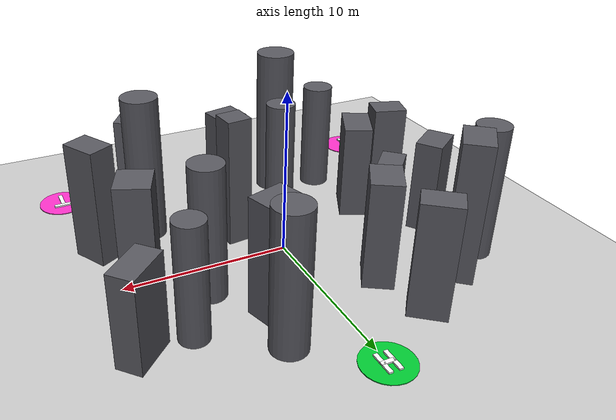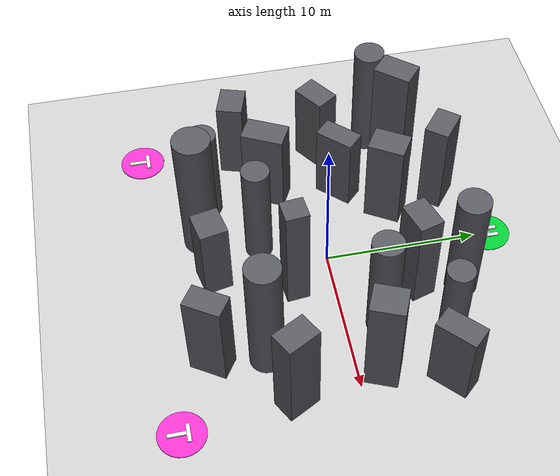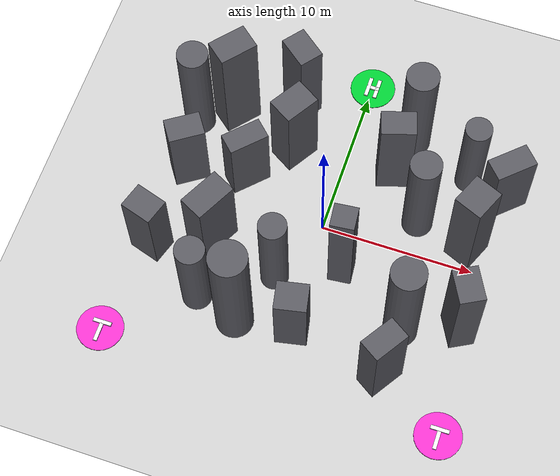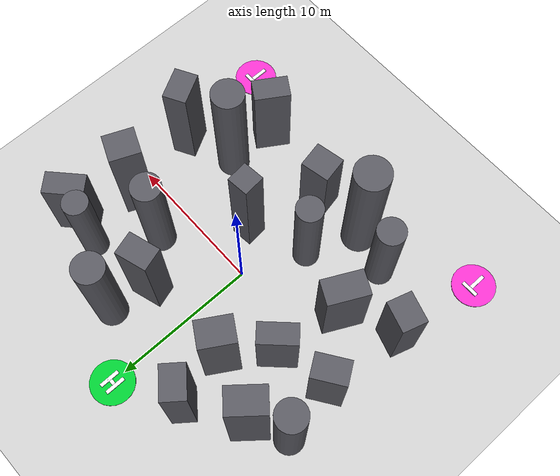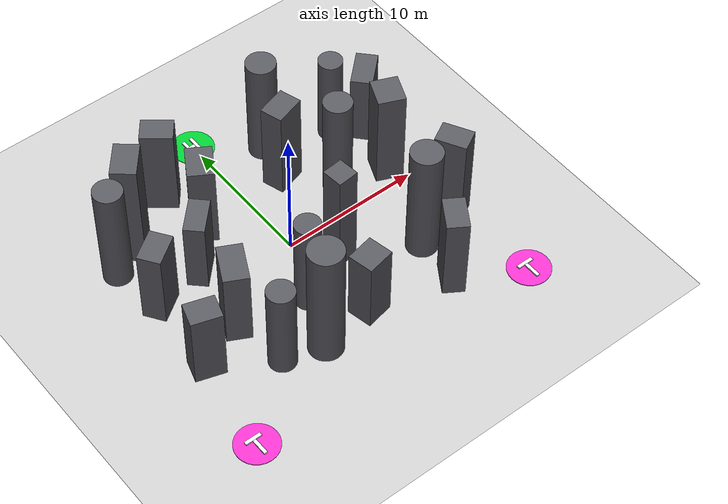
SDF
<?xml version="1.0" ?>
<sdf version="1.6">
  <world name="new_world1">
    <!--  new_world1  "Cluttered Blocks"                    -->
    <!--  25x25 m irregular obstacle field. All obstacles use one steel gray, -->
    <!--  position/size/height/yaw all varied, box + cylinder mix, -->
    <!--  forming a complex navigation environment of dense gaps and open spaces. -->
    <!--  Design notes:                                     -->
    <!--   - Color: single steel gray (unified material)    -->
    <!--   - Shape: box + cylinder random mix               -->
    <!--   - Size: length/width 1.4~2.8 m, height 5~9.5 m varied -->
    <!--   - Yaw: random, breaks the grid feel              -->
    <!--   - Layout: asymmetric scatter, clusters and open spaces -->
    <!--  All obstacle tops z > 4 m, blocking z=4 m cruise altitude. -->
    <!--  Navigation markers (start/goal) have no collision, do not affect lidar. -->
    <!--  Frame: ENU, unit m.                               -->

    <!-- Basic environment -->
    <include><uri>model://sun</uri></include>
    <include><uri>model://ground_plane</uri></include>

    <!--  Obstacle group (unified steel gray, irregular scatter) -->
    <!--  material: ambient/diffuse mid gray, slight emissive to brighten -->
    <!--  pose = x y (z=length/2) 0 0 yaw                   -->
    <!--  box:    size = sx sy length                       -->
    <!--  cyl:    radius = r, length = length               -->

    <!-- == North cluster (y>0, near takeoff/landing area, keep (0,11) radius 3 m clear) == -->
    <model name="obs_01">
      <static>true</static>
      <pose>3.2 5.1 3.5 0 0 0.30</pose>
      <link name="link">
        <collision name="collision"><geometry><box><size>2.2 1.6 7.0</size></box></geometry></collision>
        <visual name="visual">
          <geometry><box><size>2.2 1.6 7.0</size></box></geometry>
          <material>
            <ambient>0.35 0.35 0.38 1</ambient>
            <diffuse>0.35 0.35 0.38 1</diffuse>
            <specular>0.10 0.10 0.12 1</specular>
            <emissive>0.06 0.06 0.07 1</emissive>
          </material>
        </visual>
      </link>
    </model>
    <model name="obs_02">
      <static>true</static>
      <pose>-3.5 4.8 3.25 0 0 -0.55</pose>
      <link name="link">
        <collision name="collision"><geometry><box><size>1.8 2.4 6.5</size></box></geometry></collision>
        <visual name="visual">
          <geometry><box><size>1.8 2.4 6.5</size></box></geometry>
          <material>
            <ambient>0.35 0.35 0.38 1</ambient>
            <diffuse>0.35 0.35 0.38 1</diffuse>
            <specular>0.10 0.10 0.12 1</specular>
            <emissive>0.06 0.06 0.07 1</emissive>
          </material>
        </visual>
      </link>
    </model>
    <model name="obs_03">
      <static>true</static>
      <pose>5.7 2.3 4.0 0 0 0</pose>
      <link name="link">
        <collision name="collision"><geometry><cylinder><radius>1.0</radius><length>8.0</length></cylinder></geometry></collision>
        <visual name="visual">
          <geometry><cylinder><radius>1.0</radius><length>8.0</length></cylinder></geometry>
          <material>
            <ambient>0.35 0.35 0.38 1</ambient>
            <diffuse>0.35 0.35 0.38 1</diffuse>
            <specular>0.10 0.10 0.12 1</specular>
            <emissive>0.06 0.06 0.07 1</emissive>
          </material>
        </visual>
      </link>
    </model>
    <model name="obs_04">
      <static>true</static>
      <pose>-5.8 2.0 2.75 0 0 0.80</pose>
      <link name="link">
        <collision name="collision"><geometry><box><size>2.6 1.4 5.5</size></box></geometry></collision>
        <visual name="visual">
          <geometry><box><size>2.6 1.4 5.5</size></box></geometry>
          <material>
            <ambient>0.35 0.35 0.38 1</ambient>
            <diffuse>0.35 0.35 0.38 1</diffuse>
            <specular>0.10 0.10 0.12 1</specular>
            <emissive>0.06 0.06 0.07 1</emissive>
          </material>
        </visual>
      </link>
    </model>
    <model name="obs_05">
      <static>true</static>
      <pose>3.8 8.0 4.1 0 0 0</pose>
      <link name="link">
        <collision name="collision"><geometry><cylinder><radius>1.05</radius><length>8.2</length></cylinder></geometry></collision>
        <visual name="visual">
          <geometry><cylinder><radius>1.05</radius><length>8.2</length></cylinder></geometry>
          <material>
            <ambient>0.35 0.35 0.38 1</ambient>
            <diffuse>0.35 0.35 0.38 1</diffuse>
            <specular>0.10 0.10 0.12 1</specular>
            <emissive>0.06 0.06 0.07 1</emissive>
          </material>
        </visual>
      </link>
    </model>
    <model name="obs_06">
      <static>true</static>
      <pose>-4.2 8.5 3.4 0 0 0.90</pose>
      <link name="link">
        <collision name="collision"><geometry><box><size>1.6 2.2 6.8</size></box></geometry></collision>
        <visual name="visual">
          <geometry><box><size>1.6 2.2 6.8</size></box></geometry>
          <material>
            <ambient>0.35 0.35 0.38 1</ambient>
            <diffuse>0.35 0.35 0.38 1</diffuse>
            <specular>0.10 0.10 0.12 1</specular>
            <emissive>0.06 0.06 0.07 1</emissive>
          </material>
        </visual>
      </link>
    </model>
    <model name="obs_07">
      <static>true</static>
      <pose>8.0 6.0 4.0 0 0 0</pose>
      <link name="link">
        <collision name="collision"><geometry><cylinder><radius>0.85</radius><length>6.8</length></cylinder></geometry></collision>
        <visual name="visual">
          <geometry><cylinder><radius>0.85</radius><length>6.8</length></cylinder></geometry>
          <material>
            <ambient>0.35 0.35 0.38 1</ambient>
            <diffuse>0.35 0.35 0.38 1</diffuse>
            <specular>0.10 0.10 0.12 1</specular>
            <emissive>0.06 0.06 0.07 1</emissive>
          </material>
        </visual>
      </link>
    </model>
    <model name="obs_08">
      <static>true</static>
      <pose>-8.0 6.3 4.25 0 0 -0.70</pose>
      <link name="link">
        <collision name="collision"><geometry><box><size>1.7 2.5 8.5</size></box></geometry></collision>
        <visual name="visual">
          <geometry><box><size>1.7 2.5 8.5</size></box></geometry>
          <material>
            <ambient>0.35 0.35 0.38 1</ambient>
            <diffuse>0.35 0.35 0.38 1</diffuse>
            <specular>0.10 0.10 0.12 1</specular>
            <emissive>0.06 0.06 0.07 1</emissive>
          </material>
        </visual>
      </link>
    </model>
    <model name="obs_09">
      <static>true</static>
      <pose>9.2 1.5 3.75 0 0 -0.40</pose>
      <link name="link">
        <collision name="collision"><geometry><box><size>1.9 2.1 7.5</size></box></geometry></collision>
        <visual name="visual">
          <geometry><box><size>1.9 2.1 7.5</size></box></geometry>
          <material>
            <ambient>0.35 0.35 0.38 1</ambient>
            <diffuse>0.35 0.35 0.38 1</diffuse>
            <specular>0.10 0.10 0.12 1</specular>
            <emissive>0.06 0.06 0.07 1</emissive>
          </material>
        </visual>
      </link>
    </model>
    <model name="obs_10">
      <static>true</static>
      <pose>-9.5 1.2 3.0 0 0 0.60</pose>
      <link name="link">
        <collision name="collision"><geometry><box><size>2.3 1.6 5.8</size></box></geometry></collision>
        <visual name="visual">
          <geometry><box><size>2.3 1.6 5.8</size></box></geometry>
          <material>
            <ambient>0.35 0.35 0.38 1</ambient>
            <diffuse>0.35 0.35 0.38 1</diffuse>
            <specular>0.10 0.10 0.12 1</specular>
            <emissive>0.06 0.06 0.07 1</emissive>
          </material>
        </visual>
      </link>
    </model>

    <!-- == Central core area (low y, high-density gaps) == -->
    <model name="obs_11">
      <static>true</static>
      <pose>2.1 -2.5 4.0 0 0 0.10</pose>
      <link name="link">
        <collision name="collision"><geometry><box><size>1.5 1.5 8.0</size></box></geometry></collision>
        <visual name="visual">
          <geometry><box><size>1.5 1.5 8.0</size></box></geometry>
          <material>
            <ambient>0.35 0.35 0.38 1</ambient>
            <diffuse>0.35 0.35 0.38 1</diffuse>
            <specular>0.10 0.10 0.12 1</specular>
            <emissive>0.06 0.06 0.07 1</emissive>
          </material>
        </visual>
      </link>
    </model>
    <model name="obs_12">
      <static>true</static>
      <pose>-1.8 -4.2 3.75 0 0 0</pose>
      <link name="link">
        <collision name="collision"><geometry><cylinder><radius>0.9</radius><length>7.5</length></cylinder></geometry></collision>
        <visual name="visual">
          <geometry><cylinder><radius>0.9</radius><length>7.5</length></cylinder></geometry>
          <material>
            <ambient>0.35 0.35 0.38 1</ambient>
            <diffuse>0.35 0.35 0.38 1</diffuse>
            <specular>0.10 0.10 0.12 1</specular>
            <emissive>0.06 0.06 0.07 1</emissive>
          </material>
        </visual>
      </link>
    </model>
    <model name="obs_13">
      <static>true</static>
      <pose>-6.5 -2.8 3.0 0 0 1.10</pose>
      <link name="link">
        <collision name="collision"><geometry><box><size>2.8 1.7 6.0</size></box></geometry></collision>
        <visual name="visual">
          <geometry><box><size>2.8 1.7 6.0</size></box></geometry>
          <material>
            <ambient>0.35 0.35 0.38 1</ambient>
            <diffuse>0.35 0.35 0.38 1</diffuse>
            <specular>0.10 0.10 0.12 1</specular>
            <emissive>0.06 0.06 0.07 1</emissive>
          </material>
        </visual>
      </link>
    </model>
    <model name="obs_14">
      <static>true</static>
      <pose>6.8 -5.2 4.5 0 0 0</pose>
      <link name="link">
        <collision name="collision"><geometry><cylinder><radius>1.1</radius><length>9.0</length></cylinder></geometry></collision>
        <visual name="visual">
          <geometry><cylinder><radius>1.1</radius><length>9.0</length></cylinder></geometry>
          <material>
            <ambient>0.35 0.35 0.38 1</ambient>
            <diffuse>0.35 0.35 0.38 1</diffuse>
            <specular>0.10 0.10 0.12 1</specular>
            <emissive>0.06 0.06 0.07 1</emissive>
          </material>
        </visual>
      </link>
    </model>
    <model name="obs_15">
      <static>true</static>
      <pose>0.5 -7.5 3.25 0 0 0.20</pose>
      <link name="link">
        <collision name="collision"><geometry><box><size>2.0 1.8 5.5</size></box></geometry></collision>
        <visual name="visual">
          <geometry><box><size>2.0 1.8 5.5</size></box></geometry>
          <material>
            <ambient>0.35 0.35 0.38 1</ambient>
            <diffuse>0.35 0.35 0.38 1</diffuse>
            <specular>0.10 0.10 0.12 1</specular>
            <emissive>0.06 0.06 0.07 1</emissive>
          </material>
        </visual>
      </link>
    </model>
    <model name="obs_16">
      <static>true</static>
      <pose>-3.2 -7.8 4.75 0 0 0</pose>
      <link name="link">
        <collision name="collision"><geometry><cylinder><radius>1.2</radius><length>9.5</length></cylinder></geometry></collision>
        <visual name="visual">
          <geometry><cylinder><radius>1.2</radius><length>9.5</length></cylinder></geometry>
          <material>
            <ambient>0.35 0.35 0.38 1</ambient>
            <diffuse>0.35 0.35 0.38 1</diffuse>
            <specular>0.10 0.10 0.12 1</specular>
            <emissive>0.06 0.06 0.07 1</emissive>
          </material>
        </visual>
      </link>
    </model>
    <model name="obs_17">
      <static>true</static>
      <pose>-6.0 -7.0 3.5 0 0 0</pose>
      <link name="link">
        <collision name="collision"><geometry><cylinder><radius>0.95</radius><length>7.0</length></cylinder></geometry></collision>
        <visual name="visual">
          <geometry><cylinder><radius>0.95</radius><length>7.0</length></cylinder></geometry>
          <material>
            <ambient>0.35 0.35 0.38 1</ambient>
            <diffuse>0.35 0.35 0.38 1</diffuse>
            <specular>0.10 0.10 0.12 1</specular>
            <emissive>0.06 0.06 0.07 1</emissive>
          </material>
        </visual>
      </link>
    </model>
    <model name="obs_18">
      <static>true</static>
      <pose>6.5 -8.5 3.25 0 0 1.00</pose>
      <link name="link">
        <collision name="collision"><geometry><box><size>2.4 1.5 6.5</size></box></geometry></collision>
        <visual name="visual">
          <geometry><box><size>2.4 1.5 6.5</size></box></geometry>
          <material>
            <ambient>0.35 0.35 0.38 1</ambient>
            <diffuse>0.35 0.35 0.38 1</diffuse>
            <specular>0.10 0.10 0.12 1</specular>
            <emissive>0.06 0.06 0.07 1</emissive>
          </material>
        </visual>
      </link>
    </model>

    <!-- == East/west edge strips (outer barrier) == -->
    <model name="obs_19">
      <static>true</static>
      <pose>10.2 -4.0 3.6 0 0 0.50</pose>
      <link name="link">
        <collision name="collision"><geometry><box><size>1.6 2.2 7.2</size></box></geometry></collision>
        <visual name="visual">
          <geometry><box><size>1.6 2.2 7.2</size></box></geometry>
          <material>
            <ambient>0.35 0.35 0.38 1</ambient>
            <diffuse>0.35 0.35 0.38 1</diffuse>
            <specular>0.10 0.10 0.12 1</specular>
            <emissive>0.06 0.06 0.07 1</emissive>
          </material>
        </visual>
      </link>
    </model>
    <model name="obs_20">
      <static>true</static>
      <pose>-10.0 -4.5 2.9 0 0 -0.30</pose>
      <link name="link">
        <collision name="collision"><geometry><box><size>2.1 1.7 5.8</size></box></geometry></collision>
        <visual name="visual">
          <geometry><box><size>2.1 1.7 5.8</size></box></geometry>
          <material>
            <ambient>0.35 0.35 0.38 1</ambient>
            <diffuse>0.35 0.35 0.38 1</diffuse>
            <specular>0.10 0.10 0.12 1</specular>
            <emissive>0.06 0.06 0.07 1</emissive>
          </material>
        </visual>
      </link>
    </model>
    <model name="obs_21">
      <static>true</static>
      <pose>-10.2 5.0 4.1 0 0 0</pose>
      <link name="link">
        <collision name="collision"><geometry><cylinder><radius>1.0</radius><length>8.2</length></cylinder></geometry></collision>
        <visual name="visual">
          <geometry><cylinder><radius>1.0</radius><length>8.2</length></cylinder></geometry>
          <material>
            <ambient>0.35 0.35 0.38 1</ambient>
            <diffuse>0.35 0.35 0.38 1</diffuse>
            <specular>0.10 0.10 0.12 1</specular>
            <emissive>0.06 0.06 0.07 1</emissive>
          </material>
        </visual>
      </link>
    </model>
    <model name="obs_22">
      <static>true</static>
      <pose>10.5 5.5 2.75 0 0 0.75</pose>
      <link name="link">
        <collision name="collision"><geometry><box><size>2.7 1.5 5.5</size></box></geometry></collision>
        <visual name="visual">
          <geometry><box><size>2.7 1.5 5.5</size></box></geometry>
          <material>
            <ambient>0.35 0.35 0.38 1</ambient>
            <diffuse>0.35 0.35 0.38 1</diffuse>
            <specular>0.10 0.10 0.12 1</specular>
            <emissive>0.06 0.06 0.07 1</emissive>
          </material>
        </visual>
      </link>
    </model>

    <!--  Navigation markers (visual only, no collision, do not affect lidar) -->
    <!--  disc: cylinder r=1.5 x thickness 0.05, z=0.025    -->
    <!--  Letters: white box combinations (H = takeoff/landing, T = goal) -->
    <!--  Bright colors kept as functional ID marks, distinct from gray obstacles -->

    <!-- start (homing): (0, 11) - green disc + white 'H' -->
    <model name="start_marker">
      <static>true</static>
      <pose>0 11 0 0 0 0</pose>
      <link name="link">
        <visual name="disc">
          <pose>0 0 0.025 0 0 0</pose>
          <geometry><cylinder><radius>1.5</radius><length>0.05</length></cylinder></geometry>
          <material>
            <ambient>0.0 0.8 0.2 1</ambient>
            <diffuse>0.0 0.8 0.2 1</diffuse>
            <specular>0.1 0.2 0.1 1</specular>
            <emissive>0.0 0.45 0.1 1</emissive>
          </material>
        </visual>
        <visual name="h_left">
          <pose>-0.3 0 0.1 0 0 0</pose>
          <geometry><box><size>0.25 1.4 0.1</size></box></geometry>
          <material><ambient>1 1 1 1</ambient><diffuse>1 1 1 1</diffuse><emissive>0.5 0.5 0.5 1</emissive></material>
        </visual>
        <visual name="h_right">
          <pose>0.3 0 0.1 0 0 0</pose>
          <geometry><box><size>0.25 1.4 0.1</size></box></geometry>
          <material><ambient>1 1 1 1</ambient><diffuse>1 1 1 1</diffuse><emissive>0.5 0.5 0.5 1</emissive></material>
        </visual>
        <visual name="h_mid">
          <pose>0 0 0.1 0 0 0</pose>
          <geometry><box><size>0.85 0.25 0.1</size></box></geometry>
          <material><ambient>1 1 1 1</ambient><diffuse>1 1 1 1</diffuse><emissive>0.5 0.5 0.5 1</emissive></material>
        </visual>
      </link>
    </model>

    <!-- goal_R: (11, -11) - magenta disc + white 'T' -->
    <model name="goal_R_marker">
      <static>true</static>
      <pose>11 -11 0 0 0 0</pose>
      <link name="link">
        <visual name="disc">
          <pose>0 0 0.025 0 0 0</pose>
          <geometry><cylinder><radius>1.5</radius><length>0.05</length></cylinder></geometry>
          <material>
            <ambient>1.0 0.2 0.8 1</ambient>
            <diffuse>1.0 0.2 0.8 1</diffuse>
            <specular>0.2 0.1 0.2 1</specular>
            <emissive>0.5 0.1 0.4 1</emissive>
          </material>
        </visual>
        <visual name="t_top">
          <pose>0 0.4 0.1 0 0 0</pose>
          <geometry><box><size>1.2 0.25 0.1</size></box></geometry>
          <material><ambient>1 1 1 1</ambient><diffuse>1 1 1 1</diffuse><emissive>0.5 0.5 0.5 1</emissive></material>
        </visual>
        <visual name="t_stem">
          <pose>0 -0.3 0.1 0 0 0</pose>
          <geometry><box><size>0.25 1.2 0.1</size></box></geometry>
          <material><ambient>1 1 1 1</ambient><diffuse>1 1 1 1</diffuse><emissive>0.5 0.5 0.5 1</emissive></material>
        </visual>
      </link>
    </model>

    <!-- goal_L: (-11, -11) - magenta disc + white 'T' -->
    <model name="goal_L_marker">
      <static>true</static>
      <pose>-11 -11 0 0 0 0</pose>
      <link name="link">
        <visual name="disc">
          <pose>0 0 0.025 0 0 0</pose>
          <geometry><cylinder><radius>1.5</radius><length>0.05</length></cylinder></geometry>
          <material>
            <ambient>1.0 0.2 0.8 1</ambient>
            <diffuse>1.0 0.2 0.8 1</diffuse>
            <specular>0.2 0.1 0.2 1</specular>
            <emissive>0.5 0.1 0.4 1</emissive>
          </material>
        </visual>
        <visual name="t_top">
          <pose>0 0.4 0.1 0 0 0</pose>
          <geometry><box><size>1.2 0.25 0.1</size></box></geometry>
          <material><ambient>1 1 1 1</ambient><diffuse>1 1 1 1</diffuse><emissive>0.5 0.5 0.5 1</emissive></material>
        </visual>
        <visual name="t_stem">
          <pose>0 -0.3 0.1 0 0 0</pose>
          <geometry><box><size>0.25 1.2 0.1</size></box></geometry>
          <material><ambient>1 1 1 1</ambient><diffuse>1 1 1 1</diffuse><emissive>0.5 0.5 0.5 1</emissive></material>
        </visual>
      </link>
    </model>

  </world>
</sdf>
